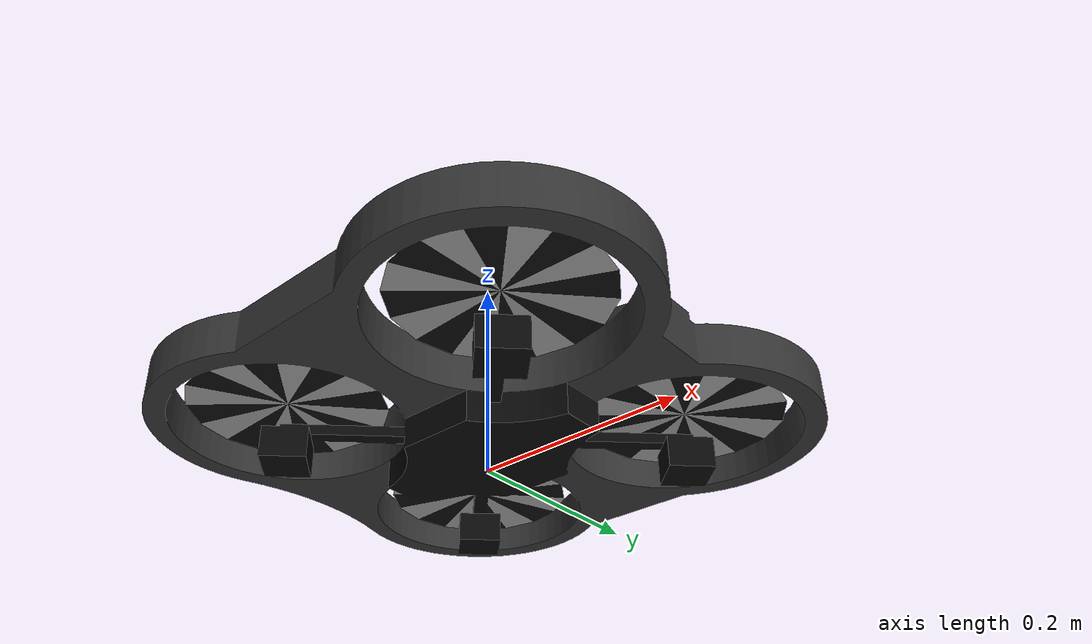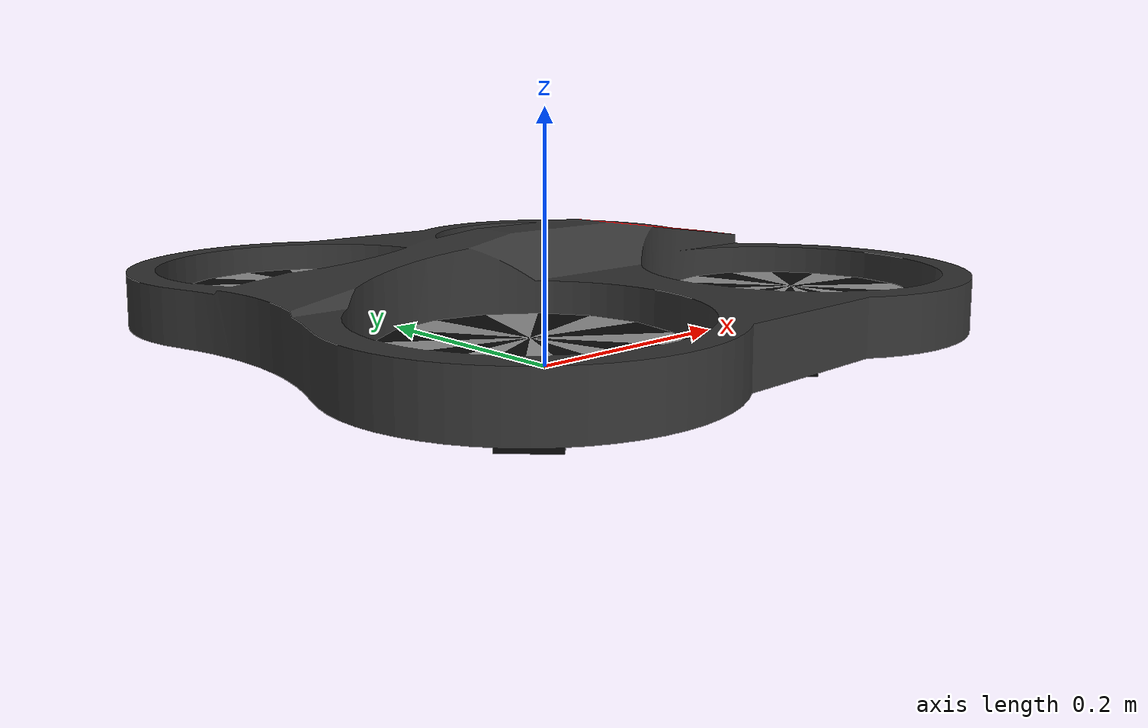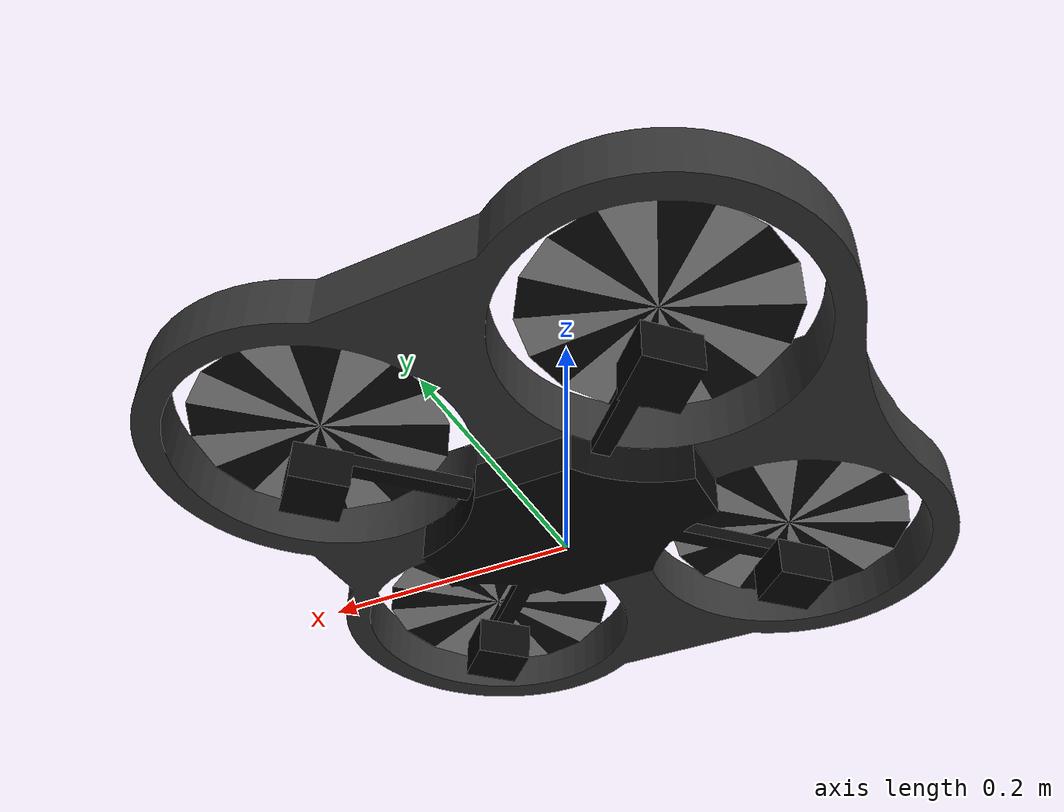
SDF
<sdf version='1.7'>
  <model name='sjtu_drone'>
    <link name='base_link'>
      <inertial>
        <pose>0 0 0 0 -0 0</pose>
        <mass>1.477</mass>
        <inertia>
          <ixx>0.1152</ixx>
          <ixy>0</ixy>
          <ixz>0</ixz>
          <iyy>0.1152</iyy>
          <iyz>0</iyz>
          <izz>0.218</izz>
        </inertia>
      </inertial>
      <collision name='base_link_fixed_joint_lump__sjtu_drone_collision_collision'>
        <pose>0 0 0.04 0 -0 0</pose>
        <geometry>
          <mesh>
            <scale>1 1 1</scale>
            <uri>model://sjtu_drone/quadrotor_4.dae</uri>
          </mesh>
        </geometry>
      </collision>
      <visual name='base_link_fixed_joint_lump__sjtu_drone_visual_visual'>
        <pose>0 0 0.04 0 -0 0</pose>
        <geometry>
          <mesh>
            <scale>1 1 1</scale>
              <uri>model://sjtu_drone/quadrotor_4.dae</uri>
          </mesh>
        </geometry>
      </visual>
      <sensor name='sensor_imu' type='imu'>
        <always_on>1</always_on>
        <visualize>1</visualize>
        <update_rate>100</update_rate>
        <pose>0 0 0 0 -0 0</pose>
        <plugin name='imu' filename='libgazebo_ros_imu_sensor.so'>
          <ros>
            <namespace>/sjtu_drone</namespace>
          </ros>
          <initial_orientation_as_reference>0</initial_orientation_as_reference>
        </plugin>
        <imu>
          <noise>
            <type>gaussian</type>
            <rate>
              <mean>0</mean>
              <stddev>0</stddev>
            </rate>
            <accel>
              <mean>0</mean>
              <stddev>0.00</stddev>
            </accel>
          </noise>
        </imu>
      </sensor>
      <sensor name='gps' type='gps'>
        <always_on>1</always_on>
        <update_rate>30</update_rate>
        <gps>
          <position_sensing>
            <horizontal>
              <noise type='gaussian'>
                <mean>0</mean>
                <stddev>0.0002</stddev>
              </noise>
            </horizontal>
            <vertical>
              <noise type='gaussian'>
                <mean>0</mean>
                <stddev>0.0002</stddev>
              </noise>
            </vertical>
          </position_sensing>
        </gps>
        <plugin name='gps' filename='libgazebo_ros_gps_sensor.so'>
          <ros>
            <namespace>/sjtu_drone/gps</namespace>
            <remapping>~/out:=data</remapping>
          </ros>
        </plugin>
      </sensor>
      <sensor name='down_camera' type='camera'>
        <camera>
          <horizontal_fov>1.047</horizontal_fov>
          <image>
            <width>640</width>
            <height>360</height>
            <format>R8G8B8</format>
          </image>
          <clip>
            <near>0.1</near>
            <far>100</far>
          </clip>
          <noise>
            <type>gaussian</type>
            <mean>0</mean>
            <stddev>0.005</stddev>
          </noise>
        </camera>
        <always_on>1</always_on>
        <update_rate>15</update_rate>
        <visualize>1</visualize>
        <plugin name='camera_bottom' filename='libgazebo_ros_camera.so'>
          <ros>
            <namespace>/sjtu_drone</namespace>
            <remapping>image_raw:=camera_bottom</remapping>
            <remapping>camera_info:=camera_bottom_info</remapping>
          </ros>
          <camera_name>bottom</camera_name>
          <frame_name>bottom_cam_link</frame_name>
          <hack_baseline>0.07</hack_baseline>
        </plugin>
        <pose>0 0 0 3.14159 1.57079 3.14159</pose>
      </sensor>
      <sensor name='front_camera' type='camera'>
        <camera>
          <horizontal_fov>2.09</horizontal_fov>
          <image>
            <width>640</width>
            <height>360</height>
            <format>R8G8B8</format>
          </image>
          <clip>
            <near>0.1</near>
            <far>100</far>
          </clip>
          <noise>
            <type>gaussian</type>
            <mean>0</mean>
            <stddev>0.005</stddev>
          </noise>
        </camera>
        <always_on>1</always_on>
        <update_rate>60</update_rate>
        <visualize>1</visualize>
        <plugin name='camera_front' filename='libgazebo_ros_camera.so'>
          <ros>
            <namespace>/sjtu_drone</namespace>
            <remapping>image_raw:=camera_front</remapping>
            <remapping>camera_info:=camera_front_info</remapping>
          </ros>
          <camera_name>front</camera_name>
          <frame_name>front_cam_link</frame_name>
          <hack_baseline>0.07</hack_baseline>
        </plugin>
        <pose>0.2 0 0 0 -0 0</pose>
      </sensor>
      <sensor name='sonar' type='ray'>
        <always_on>1</always_on>
        <visualize>1</visualize>
        <update_rate>5</update_rate>
        <ray>
          <scan>
            <horizontal>
              <samples>5</samples>
              <resolution>1</resolution>
              <min_angle>-0.12</min_angle>
              <max_angle>0.12</max_angle>
            </horizontal>
            <vertical>
              <samples>5</samples>
              <resolution>1</resolution>
              <min_angle>-0.12</min_angle>
              <max_angle>0.12</max_angle>
            </vertical>
          </scan>
          <range>
            <min>0.02</min>
            <max>10</max>
            <resolution>0.01</resolution>
          </range>
          <noise>
            <type>gaussian</type>
            <mean>0</mean>
            <stddev>0.01</stddev>
          </noise>
        </ray>
        <plugin name='sonar' filename='libgazebo_ros_ray_sensor.so'>
          <ros>
            <namespace>/sjtu_drone</namespace>
            <remapping>~/out:=sonar</remapping>
          </ros>
          <output_type>sensor_msgs/Range</output_type>
          <radiation_type>ultrasound</radiation_type>
          <frame_name>sonar_link</frame_name>
        </plugin>
        <pose>0 0 0 3.14159 1.57079 3.14159</pose>
      </sensor>
    </link>
    <static>0</static>
    <plugin name='simple_drone' filename='libplugin_drone.so'>
      <bodyName>base_link</bodyName>
      <rosNamespace>drone</rosNamespace>
      <imuTopic>imu</imuTopic>
      <rollpitchProportionalGain>10.0</rollpitchProportionalGain>
      <rollpitchDifferentialGain>5.0</rollpitchDifferentialGain>
      <rollpitchLimit>0.5</rollpitchLimit>
      <yawProportionalGain>2.0</yawProportionalGain>
      <yawDifferentialGain>1.0</yawDifferentialGain>
      <yawLimit>1.5</yawLimit>
      <velocityXYProportionalGain>5.0</velocityXYProportionalGain>
      <velocityXYDifferentialGain>2.3</velocityXYDifferentialGain>
      <velocityXYLimit>2</velocityXYLimit>
      <velocityZProportionalGain>5.0</velocityZProportionalGain>
      <velocityZIntegralGain>0.0</velocityZIntegralGain>
      <velocityZDifferentialGain>1.0</velocityZDifferentialGain>
      <velocityZLimit>-1</velocityZLimit>
      <positionXYProportionalGain>1.1</positionXYProportionalGain>
      <positionXYDifferentialGain>0.0</positionXYDifferentialGain>
      <positionXYIntegralGain>0.0</positionXYIntegralGain>
      <positionXYLimit>5</positionXYLimit>
      <positionZProportionalGain>1.0</positionZProportionalGain>
      <positionZDifferentialGain>0.2</positionZDifferentialGain>
      <positionZIntegralGain>0.0</positionZIntegralGain>
      <positionZLimit>-1</positionZLimit>
      <maxForce>30</maxForce>
      <motionSmallNoise>0.05</motionSmallNoise>
      <motionDriftNoise>0.03</motionDriftNoise>
      <motionDriftNoiseTime>5.0</motionDriftNoiseTime>
    </plugin>
  </model>
</sdf>
